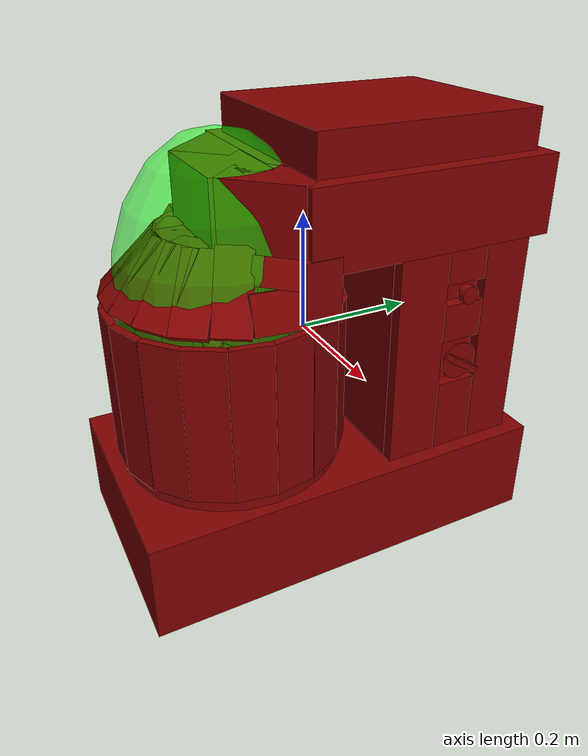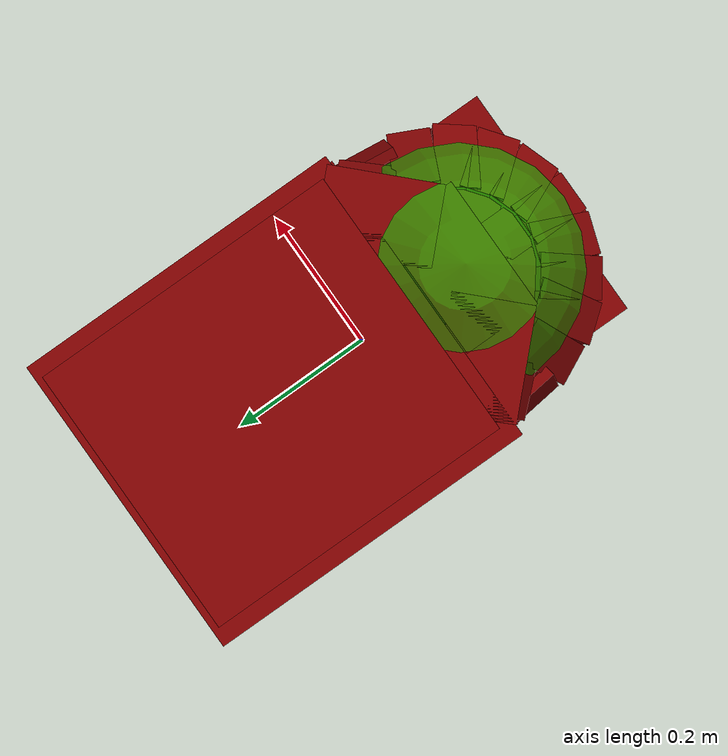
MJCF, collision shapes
<?xml version='1.0' encoding='UTF-8'?>
<mujoco model="model">
  <option timestep="0.002" gravity="0.0 0.0 -9.81"/>
  <compiler angle="radian"/>
  <asset>
    <mesh file="visuals/blender.obj" name="blender_vis"/>
    <mesh file="visuals/bowl.obj" name="bowl_vis"/>
    <mesh file="visuals/button_head_lock.obj" name="button_head_lock_vis"/>
    <mesh file="visuals/head.obj" name="head_vis"/>
    <mesh file="visuals/knob_speed.obj" name="knob_speed_vis"/>
    <mesh file="visuals/Body001.obj" name="Body001_vis"/>
    <texture file="visuals/T_BC001.png" name="Body001_material" type="2d"/>
    <material name="Body001_material" rgba="1 1 1 1.0" texture="Body001_material" shininess="0.1" specular="0.9"/>
    <texture file="visuals/T_BC001.png" name="bowl_material" type="2d"/>
    <material name="bowl_material" rgba="1 1 1 1.0" texture="bowl_material" shininess="0.1" specular="0.9"/>
    <texture file="visuals/T_BC001.png" name="button_head_lock_material" type="2d"/>
    <material name="button_head_lock_material" rgba="1 1 1 1.0" texture="button_head_lock_material" shininess="0.1" specular="0.9"/>
    <texture file="visuals/T_BC001.png" name="head_material" type="2d"/>
    <material name="head_material" rgba="1 1 1 1.0" texture="head_material" shininess="0.1" specular="0.9"/>
    <texture file="visuals/T_BC001.png" name="blender_material" type="2d"/>
    <material name="blender_material" rgba="1 1 1 1.0" texture="blender_material" shininess="0.1" specular="0.9"/>
    <texture file="visuals/T_BC001.png" name="knob_speed_material" type="2d"/>
    <material name="knob_speed_material" rgba="1 1 1 1.0" texture="knob_speed_material" shininess="0.1" specular="0.9"/>
  </asset>
  <default>
    <default class="visual">
      <geom conaffinity="0" contype="0" group="1" type="mesh"/>
    </default>
    <default class="collision">
      <geom group="0" rgba="0.5 0 0 0.5"/>
    </default>
    <default class="spawn">
      <geom group="0" rgba="1 1 1 0.5" contype="0" conaffinity="0"/>
      <site group="0" rgba="1 1 1 0.5"/>
    </default>
    <default class="region">
      <geom group="1" conaffinity="0" contype="0" rgba="0 1 0 0"/>
    </default>
  </default>
  <worldbody>
    <body>
      <body name="object">
        <geom mesh="Body001_vis" type="mesh" solimp="0.998 0.998 0.001" solref="0.001 1" friction="0.95 0.3 0.1" class="visual" material="Body001_material"/>
        <geom type="box" pos="0.00479950 0.00000000 -0.28111044" size="0.19251543283462524 0.34842848777770996 0.08424658328294754" quat="1.0 0.0 0.0 0.0" class="collision"/>
        <geom type="box" pos="-0.01058882 0.19475512 -0.01122107" size="0.16297440230846405 0.12090107053518295 0.1839895248413086" quat="1.0 0.0 0.0 0.0" class="collision"/>
        <geom type="box" pos="0.16387165 0.27531415 -0.01122107" size="0.009846153669059277 0.04034204035997391 0.1839895248413086" quat="1.0 0.0 0.0 0.0" class="collision"/>
        <geom type="box" pos="0.16387165 0.11826086 -0.01122107" size="0.009846153669059277 0.04394160956144333 0.1839895248413086" quat="1.0 0.0 0.0 0.0" class="collision"/>
        <geom type="box" pos="0.16387165 0.19849299 -0.13267896" size="0.009846153669059277 0.03491780906915665 0.06253164261579514" quat="1.0 0.0 0.0 0.0" class="collision"/>
        <geom type="box" pos="0.16387165 0.19849299 0.14094439" size="0.009846153669059277 0.03491780906915665 0.03183937817811966" quat="1.0 0.0 0.0 0.0" class="collision"/>
        <geom type="box" pos="0.16387165 0.19849299 0.04133829" size="0.009846153669059277 0.03491780906915665 0.03183937817811966" quat="1.0 0.0 0.0 0.0" class="collision"/>
        <body name="bowl">
          <geom mesh="bowl_vis" type="mesh" solimp="0.998 0.998 0.001" solref="0.001 1" friction="0.95 0.3 0.1" class="visual" material="bowl_material"/>
          <geom type="cylinder" pos="-0.00010131 -0.14019130 -0.18164055" size="0.18583239614963531 0.010407824069261551" quat="1.0 0.0 0.0 0.0" class="collision"/>
          <geom type="box" pos="0.18134426 -0.17216861 -0.03994373" size="0.0061767445877194405 0.033245980739593506 0.12993557751178741" quat="0.9961947202682495 0.0 -0.0 -0.08715573698282242" class="collision"/>
          <geom type="box" pos="-0.18136032 -0.10821400 -0.03994373" size="0.0061767445877194405 0.033245980739593506 0.12993557751178741" quat="0.9961947202682495 0.0 -0.0 -0.08715573698282242" class="collision"/>
          <geom type="box" pos="-0.00000805 -0.32434124 -0.03994373" size="0.033245980739593506 0.006176746916025877 0.1299353837966919" quat="1.0 0.0 0.0 0.0" class="collision"/>
          <geom type="box" pos="-0.00000802 0.04395865 -0.03994373" size="0.033245980739593506 0.006176746916025877 0.12993547320365906" quat="1.0 0.0 0.0 0.0" class="collision"/>
          <geom type="box" pos="-0.06299102 0.03285305 -0.03994373" size="0.0061767445877194405 0.033245980739593506 0.12993557751178741" quat="0.8191520571708679 0.0 -0.0 -0.5735764503479004" class="collision"/>
          <geom type="box" pos="0.06297496 -0.31323564 -0.03994373" size="0.0061767445877194405 0.033245980739593506 0.12993557751178741" quat="0.8191520571708679 0.0 -0.0 -0.5735764503479004" class="collision"/>
          <geom type="box" pos="0.11836127 -0.28125834 -0.03994373" size="0.0061767445877194405 0.033245980739593506 0.12993557751178741" quat="0.9063077569007874 0.0 -0.0 -0.4226183593273163" class="collision"/>
          <geom type="box" pos="-0.11837733 0.00087576 -0.03994373" size="0.0061767445877194405 0.033245980739593506 0.12993557751178741" quat="0.9063077569007874 0.0 -0.0 -0.4226183593273163" class="collision"/>
          <geom type="box" pos="-0.15948655 -0.04811631 -0.03994373" size="0.0061767445877194405 0.033245980739593506 0.12993557751178741" quat="0.9659258127212524 0.0 -0.0 -0.2588190734386444" class="collision"/>
          <geom type="box" pos="0.15947050 -0.23226628 -0.03994373" size="0.0061767445877194405 0.033245980739593506 0.12993557751178741" quat="0.9659258127212524 0.0 -0.0 -0.2588190734386444" class="collision"/>
          <geom type="box" pos="0.06297500 0.03285304 -0.03994373" size="0.0061767445877194405 0.033245980739593506 0.12993557751178741" quat="0.8191519975662231 0.0 0.0 0.5735765099525452" class="collision"/>
          <geom type="box" pos="-0.06299104 -0.31323564 -0.03994373" size="0.0061767445877194405 0.033245980739593506 0.12993557751178741" quat="0.8191519975662231 0.0 0.0 0.5735765099525452" class="collision"/>
          <geom type="box" pos="-0.11837734 -0.28125834 -0.03994373" size="0.0061767445877194405 0.033245980739593506 0.12993557751178741" quat="0.9063078165054321 0.0 0.0 0.42261821031570435" class="collision"/>
          <geom type="box" pos="0.11836131 0.00087573 -0.03994373" size="0.0061767445877194405 0.033245980739593506 0.12993557751178741" quat="0.9063078165054321 0.0 0.0 0.42261821031570435" class="collision"/>
          <geom type="box" pos="0.15947053 -0.04811636 -0.03994373" size="0.0061767445877194405 0.033245980739593506 0.12993557751178741" quat="0.9659258127212524 0.0 0.0 0.2588190734386444" class="collision"/>
          <geom type="box" pos="-0.15948656 -0.23226626 -0.03994373" size="0.0061767445877194405 0.033245980739593506 0.12993557751178741" quat="0.9659258127212524 0.0 0.0 0.2588190734386444" class="collision"/>
          <geom type="box" pos="-0.18136032 -0.17216858 -0.03994373" size="0.0061767445877194405 0.033245984464883804 0.12993557751178741" quat="0.9961947202682495 0.0 0.0 0.08715561032295227" class="collision"/>
          <geom type="box" pos="0.18134429 -0.10821403 -0.03994373" size="0.0061767445877194405 0.033245984464883804 0.12993557751178741" quat="0.9961947202682495 0.0 0.0 0.08715561032295227" class="collision"/>
          <geom name="reg_bowl" type="ellipsoid" pos="0.00087723 -0.14145979 0.08985191" size="0.16639654338359833 0.1710948646068573 0.2604679763317108" rgba="0 1 0 0.5" class="region"/>
        </body>
        <body name="button_head_lock">
          <joint axis="-1.0 0.0 0.0" pos="0.17874989 0.19904800 0.09049630" limited="true" name="button_head_lock_joint" range="0.0 0.003" type="slide" damping="1" frictionloss="1" armature=".01" stiffness="0.05"/>
          <geom mesh="button_head_lock_vis" type="mesh" solimp="0.998 0.998 0.001" solref="0.001 1" friction="0.95 0.3 0.1" class="visual" material="button_head_lock_material"/>
          <geom class="collision" type="cylinder" pos="0.17880759 0.19904798 0.09052038" size="0.014642302878201008 0.007393617648631334" quat="0.7071068286895752 -0.0 0.7071067690849304 0.0" name="button_head_lock_main"/>
        </body>
        <body name="head">
          <joint axis="-1.0 0.0 0.0" pos="0.00003790 0.31874591 0.17423128" limited="true" name="head_joint" range="0.0 1.5707963267948966" type="hinge" damping="1" frictionloss="1" armature=".01" stiffness="0.05"/>
          <geom mesh="head_vis" type="mesh" solimp="0.998 0.998 0.001" solref="0.001 1" friction="0.95 0.3 0.1" class="visual" material="head_material"/>
          <geom type="box" pos="-0.00045038 0.12257081 0.23727286" size="0.1943187117576599 0.2085888683795929 0.06351733207702637" quat="1.0 0.0 0.0 0.0" class="collision"/>
          <geom type="box" pos="0.00227256 -0.13702893 0.23727286" size="0.08539991080760956 0.04922421649098396 0.06351733207702637" quat="1.0 0.0 0.0 0.0" class="collision"/>
          <geom type="box" pos="0.10206094 -0.09596774 0.23727286" size="0.06879246234893799 0.04922395572066307 0.06351733207702637" quat="0.9238795042037964 0.0 0.0 0.3826834559440613" class="collision"/>
          <geom type="box" pos="-0.09825914 -0.10031419 0.23727286" size="0.06904993206262589 0.04922395944595337 0.06351733207702637" quat="0.9238795042037964 0.0 -0.0 -0.3826834559440613" class="collision"/>
          <geom type="box" pos="-0.00005446 0.12257081 0.33328357" size="0.16760961711406708 0.18835023045539856 0.03170707821846008" quat="1.0 0.0 0.0 0.0" class="collision"/>
          <geom type="box" pos="0.18941081 -0.06659175 0.15252440" size="0.007024100515991449 0.027991430833935738 0.04819820448756218" quat="1.0 0.0 0.0 0.0" class="collision"/>
          <geom type="box" pos="0.17969069 -0.13277429 0.13198212" size="0.007024114485830069 0.03573315963149071 0.02964690513908863" quat="0.9827542901039124 -0.005831497255712748 -0.1749138981103897 -0.059708282351493835" class="collision"/>
          <geom type="box" pos="-0.00067121 -0.27930495 0.15129133" size="0.007024114485830069 0.027991430833935738 0.06515268236398697" quat="0.6562364101409912 -0.26335108280181885 -0.2633510231971741 -0.6562364101409912" class="collision"/>
          <geom type="box" pos="0.04194896 -0.27303970 0.15218876" size="0.007024114485830069 0.027991430833935738 0.06515268236398697" quat="0.752773106098175 -0.20632094144821167 -0.30972301959991455 -0.5429880023002625" class="collision"/>
          <geom type="box" pos="0.08377919 -0.25307381 0.15199929" size="0.007024114951491356 0.027991430833935738 0.06515268236398697" quat="0.8307384252548218 -0.17888695001602173 -0.32604533433914185 -0.4142071008682251" class="collision"/>
          <geom type="box" pos="0.11528976 -0.22392008 0.15162727" size="0.007024114485830069 0.02799142710864544 0.06515268236398697" quat="0.8761871457099915 -0.10927364230155945 -0.35546261072158813 -0.3065970242023468" class="collision"/>
          <geom type="box" pos="0.14324707 -0.17901364 0.15572341" size="0.007024114951491356 0.027991432696580887 0.06515268236398697" quat="0.9231134653091431 -0.09359268844127655 -0.3090006113052368 -0.2088554948568344" class="collision"/>
          <geom type="box" pos="0.16209601 -0.12146801 0.18009305" size="0.007024114485830069 0.03573315590620041 0.0211629718542099" quat="0.911022961139679 -0.08539623022079468 -0.19718386232852936 -0.3519419729709625" class="collision"/>
          <geom type="box" pos="-0.16219972 -0.12146801 0.18009305" size="0.007024114485830069 0.03573315963149071 0.0211629718542099" quat="0.911022961139679 -0.08539625257253647 0.19718389213085175 0.3519419729709625" class="collision"/>
          <geom type="box" pos="-0.08388291 -0.25307378 0.15199928" size="0.007024114951491356 0.027991430833935738 0.06515268236398697" quat="0.8307384252548218 -0.17888695001602173 0.32604533433914185 0.4142071008682251" class="collision"/>
          <geom type="box" pos="-0.04205266 -0.27303970 0.15218876" size="0.007024114951491356 0.027991430833935738 0.06515267491340637" quat="0.752773106098175 -0.20632094144821167 0.3097230792045593 0.5429880023002625" class="collision"/>
          <geom type="box" pos="-0.11539346 -0.22392009 0.15162727" size="0.007024114485830069 0.02799142710864544 0.06515268236398697" quat="0.8761871457099915 -0.10927364975214005 0.35546255111694336 0.3065970838069916" class="collision"/>
          <geom type="box" pos="-0.14335072 -0.17901361 0.15572344" size="0.007024114951491356 0.027991432696580887 0.06515267491340637" quat="0.9231135249137878 -0.0935925841331482 0.30900055170059204 0.2088552713394165" class="collision"/>
          <geom type="box" pos="-0.17979439 -0.13277429 0.13198212" size="0.007024114485830069 0.03573315963149071 0.02964690513908863" quat="0.9827542901039124 -0.00583149679005146 0.1749138981103897 0.059708282351493835" class="collision"/>
          <geom type="box" pos="-0.18522781 -0.06659175 0.15252440" size="0.007024103309959173 0.027991430833935738 0.04819824546575546" quat="1.0 0.0 0.0 0.0" class="collision"/>
          <geom type="box" pos="0.00227256 -0.21233524 0.19651197" size="0.028944510966539383 0.023552678525447845 0.004796868190169334" quat="1.0 0.0 0.0 0.0" class="collision"/>
          <geom type="box" pos="-0.04435195 -0.20218417 0.19651197" size="0.01881283149123192 0.030994737520813942 0.004796868190169334" quat="0.8969359993934631 0.0 0.0 0.44216036796569824" class="collision"/>
          <geom type="box" pos="0.05077045 -0.20069826 0.19651197" size="0.01881283149123192 0.030994733795523643 0.004796868190169334" quat="0.8969359993934631 0.0 -0.0 -0.44216039776802063" class="collision"/>
          <body name="blender">
            <joint axis="0.0 0.0 1.0" pos="0.00002235 -0.12619527 0.17489170" limited="false" name="blender_joint" range="0 360" type="hinge" damping="1" frictionloss="1" armature=".01" stiffness="0.05"/>
            <geom mesh="blender_vis" type="mesh" solimp="0.998 0.998 0.001" solref="0.001 1" friction="0.95 0.3 0.1" class="visual" material="blender_material"/>
            <geom type="cylinder" pos="0.00070645 -0.12625912 0.16439107" size="0.0488768070936203 0.009077758528292179" quat="1.0 0.0 0.0 0.0" class="collision"/>
            <geom type="cylinder" pos="-0.02954750 -0.15007511 0.11570022" size="0.008038324303925037 0.03987272456288338" quat="1.0 0.0 0.0 0.0" class="collision"/>
            <geom type="cylinder" pos="0.00337470 -0.11204024 0.13533317" size="0.014936371706426144 0.03110305406153202" quat="0.9393659830093384 0.1000475212931633 0.3272119462490082 -0.02268061228096485" class="collision"/>
            <geom type="cylinder" pos="-0.02613318 -0.12335981 0.09436906" size="0.014777264557778835 0.030771734192967415" quat="0.7805690765380859 -0.282722145318985 0.31547272205352783 0.45962709188461304" class="collision"/>
            <geom type="cylinder" pos="-0.02215140 -0.16127753 0.06076413" size="0.014777264557778835 0.030771734192967415" quat="0.6745424866676331 -0.43157464265823364 -0.039401449263095856 0.5976481437683105" class="collision"/>
            <geom type="cylinder" pos="0.01683869 -0.17599301 0.02893255" size="0.014777264557778835 0.030771734192967415" quat="0.19706715643405914 -0.4277191758155823 -0.23005877435207367 0.851641833782196" class="collision"/>
            <geom type="cylinder" pos="0.05393789 -0.14575823 0.00171689" size="0.014777264557778835 0.030771736055612564" quat="0.13328370451927185 0.16134995222091675 0.4719087481498718 -0.8564483523368835" class="collision"/>
            <geom type="cylinder" pos="0.05036687 -0.09971950 -0.02445681" size="0.012846244499087334 0.026750639081001282" quat="0.2754901349544525 -0.10154769569635391 0.5268837809562683 -0.7976131439208984" class="collision"/>
            <geom type="cylinder" pos="0.01797492 -0.07159502 -0.04290097" size="0.012846244499087334 0.026750635355710983" quat="0.5539237260818481 -0.3012176752090454 0.4401063919067383 -0.6393299698829651" class="collision"/>
            <geom type="cylinder" pos="-0.03117903 -0.07434565 -0.06720261" size="0.010498244315385818 0.031561873853206635" quat="0.6597776412963867 -0.4777856171131134 0.25537940859794617 -0.5207645297050476" class="collision"/>
            <geom type="cylinder" pos="-0.06545527 -0.10750119 -0.08790368" size="0.010498244315385818 0.025174468755722046" quat="0.8097105622291565 -0.5601747632026672 0.12818746268749237 -0.11891600489616394" class="collision"/>
            <geom type="cylinder" pos="-0.07406759 -0.14670089 -0.10274010" size="0.007984554395079613 0.019868724048137665" quat="0.8177357316017151 -0.5725573301315308 -0.058064937591552734 0.010719173587858677" class="collision"/>
          </body>
        </body>
        <body name="knob_speed">
          <joint axis="-1.0 0.0 0.0" pos="0.18725231 0.19747312 -0.03105357" limited="true" name="knob_speed_joint" range="0.0 4.886921905584122" type="hinge" damping="0.05" armature="0.001"/>
          <geom mesh="knob_speed_vis" type="mesh" solimp="0.998 0.998 0.001" solref="0.001 1" friction="0.95 0.3 0.1" class="visual" material="knob_speed_material"/>
          <geom type="cylinder" pos="0.17420818 0.19784521 -0.03105356" size="0.03231373801827431 0.0012079408625140786" quat="0.7071068286895752 -0.0 0.7071067690849304 0.0" class="collision"/>
          <geom class="collision" type="box" pos="0.18498434 0.19784521 -0.03105356" size="0.009411806240677834 0.028818931430578232 0.005275980569422245" quat="0.9626153111457825 -0.27087217569351196 -6.014570523704953e-17 6.542199994625394e-25" name="knob_speed_main"/>
        </body>
        <geom class="region" name="reg_main" type="box" pos="1.8945000000006318e-05 0.0 1.4999999992104662e-08" size="0.189103395 0.34853513 0.36542893499999995"/>
      </body>
    </body>
  </worldbody>
  <actuator>
    <motor name="button_head_lock_joint_actuator" joint="button_head_lock_joint" gear="0.5"/>
    <motor name="head_joint_actuator" joint="head_joint" gear="0.5"/>
    <motor name="knob_speed_joint_actuator" joint="knob_speed_joint" gear="0.5"/>
    <motor name="blender_joint_actuator" joint="blender_joint" gear="0.5"/>
  </actuator>
</mujoco>
